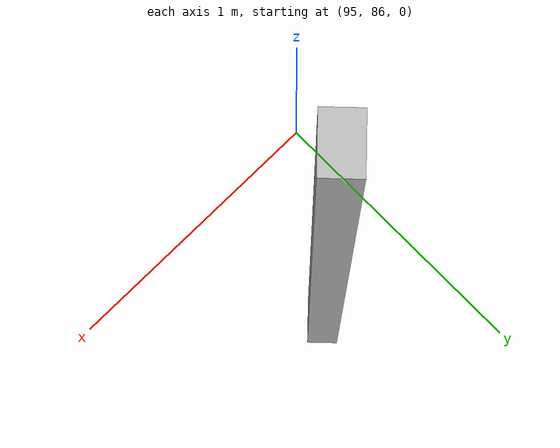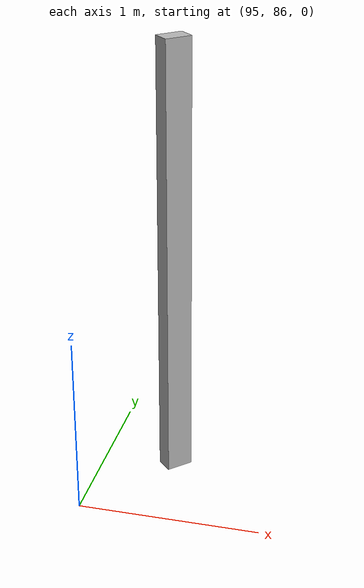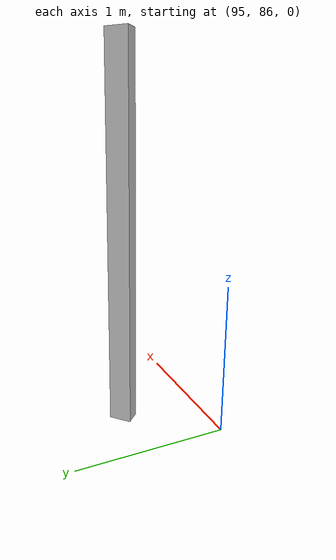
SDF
<?xml version="1.0" ?>
<sdf version="1.6">
  <model name="sps_1124">
    <pose frame="">0 0 0 0 -0 0</pose>
    <static>1</static>
    <self_collide>0</self_collide>
    <allow_auto_disable>0</allow_auto_disable>
    <link name="Wall326">
      <kinematic>0</kinematic>
      <gravity>1</gravity>
      <self_collide>0</self_collide>
      <collision name="collision">
        <geometry>
          <box>
            <size>0.100699 0.15 2.5</size>
          </box>
        </geometry>
        <pose frame="">0 0 0 0 -0 0</pose>
      </collision>
      <visual name="visual">
        <geometry>
          <box>
            <size>0.100699 0.15 2.5</size>
          </box>
        </geometry>
        <pose frame="">0 0 0 0 -0 0</pose>
        <cast_shadows>1</cast_shadows>
        <transparency>0.0</transparency>
      </visual>
      <pose frame="">95.4074 86.5416 1.25 0 0 -0.799542</pose>
    </link>
  </model>
</sdf>
